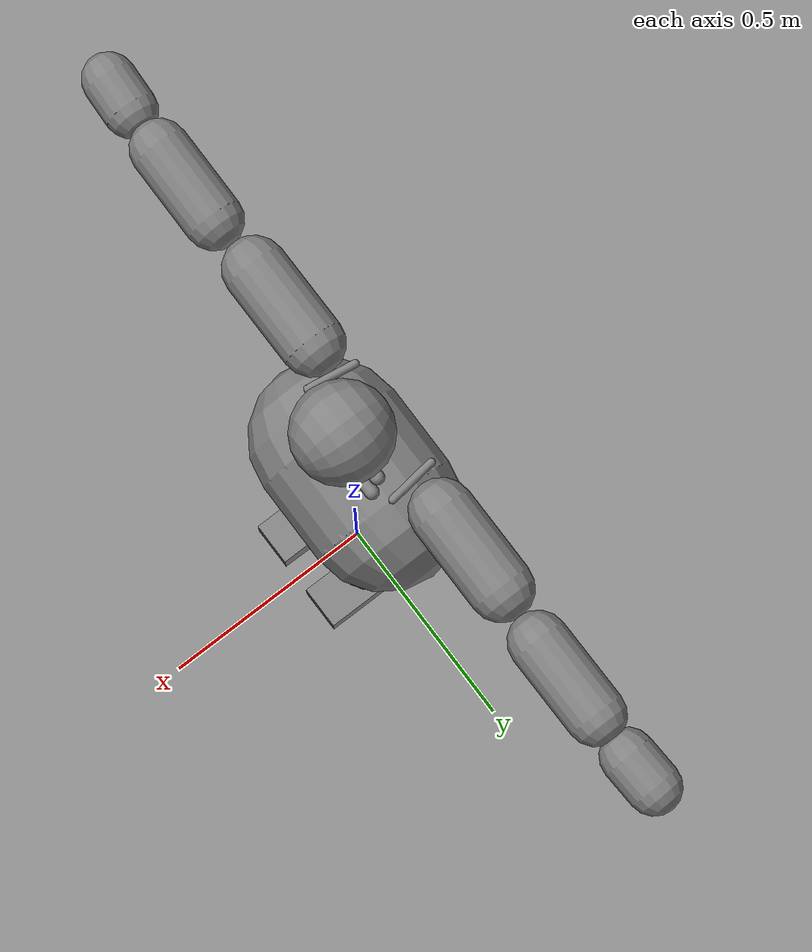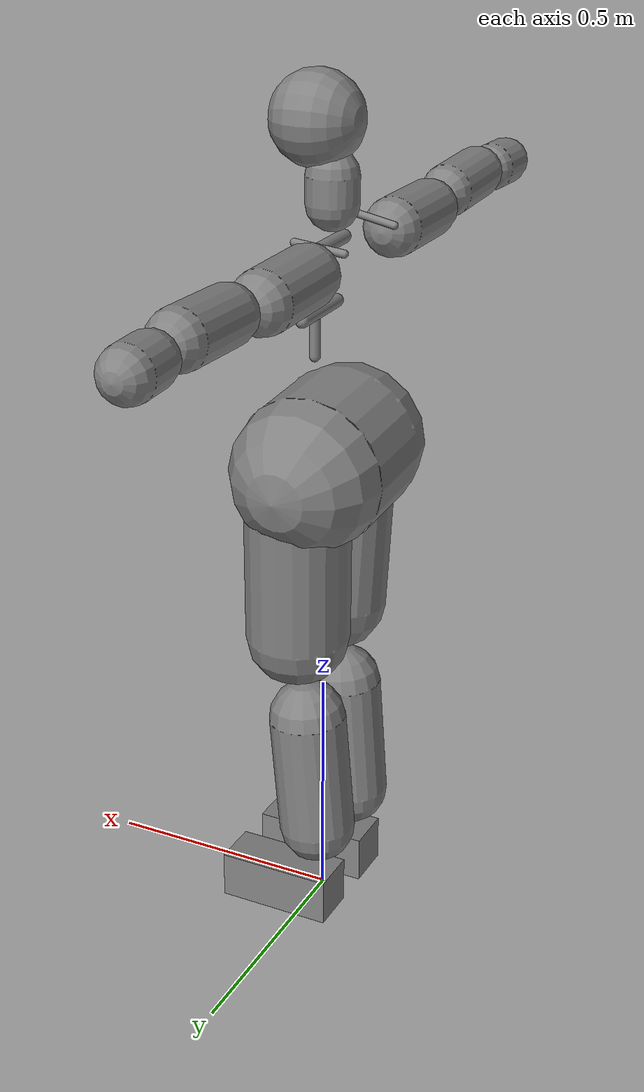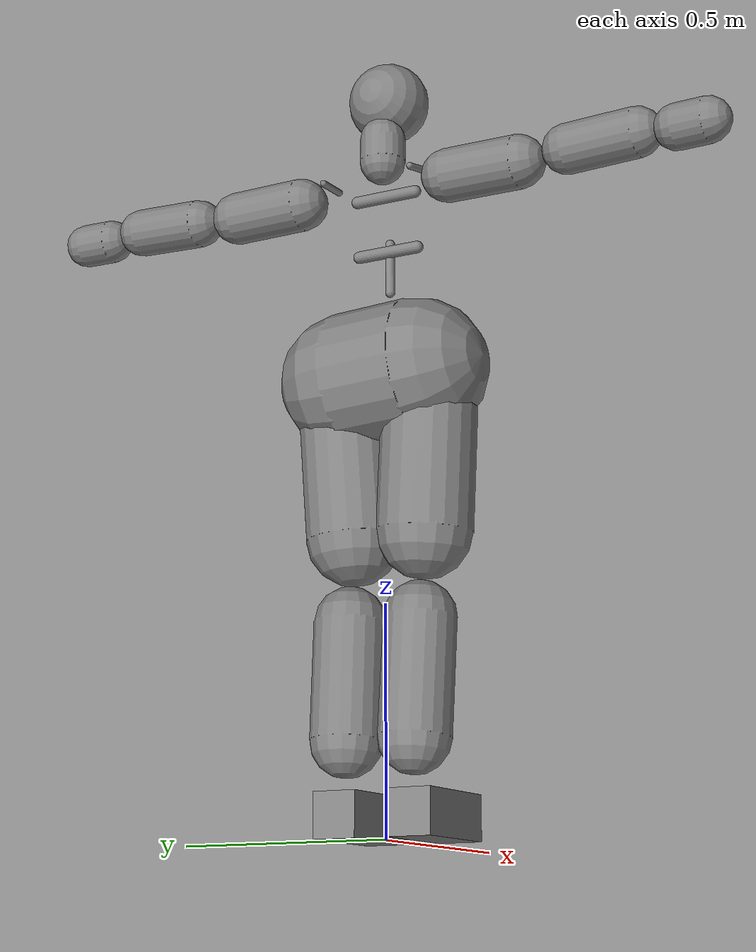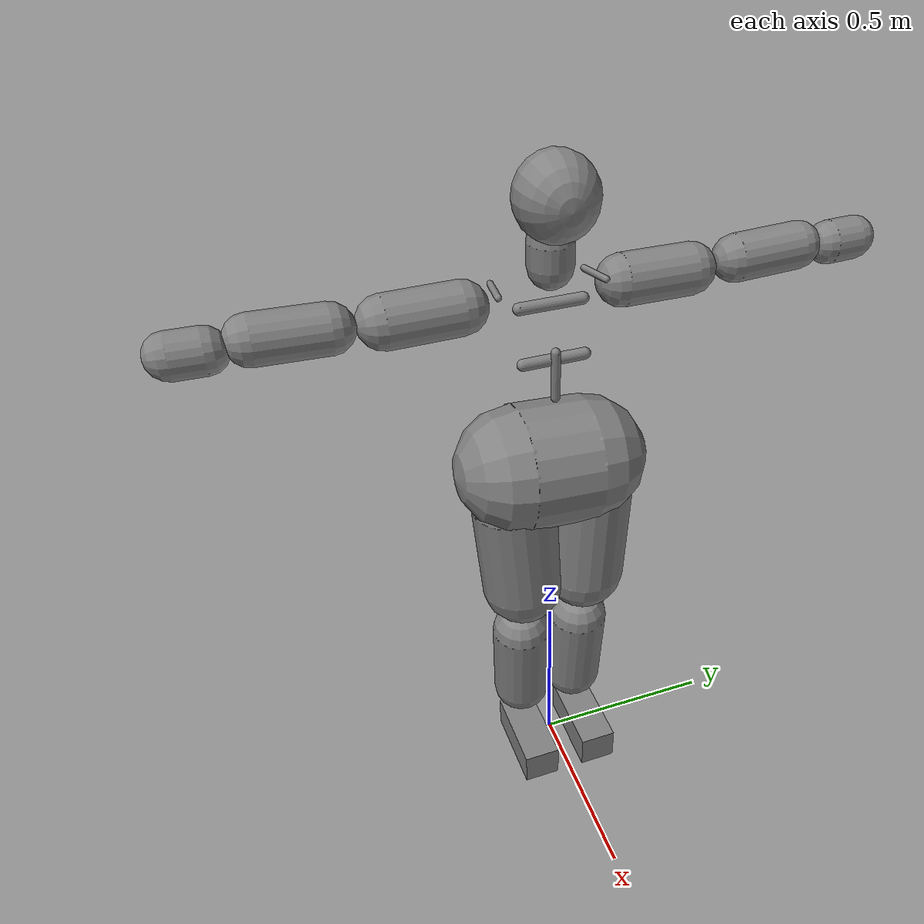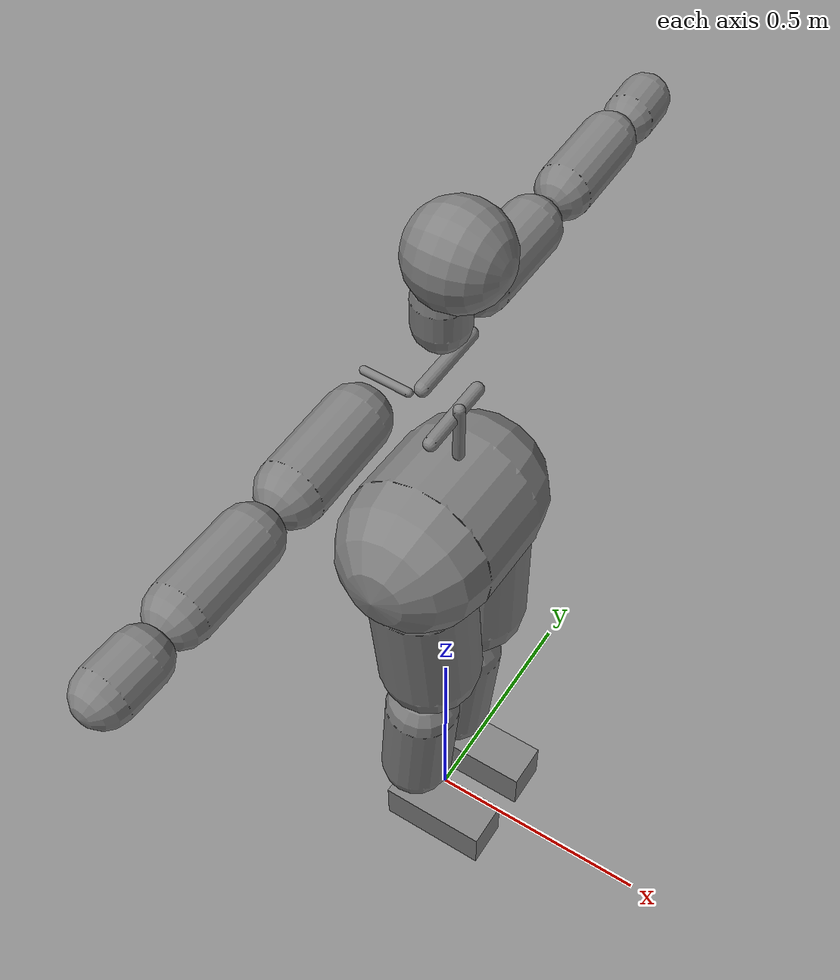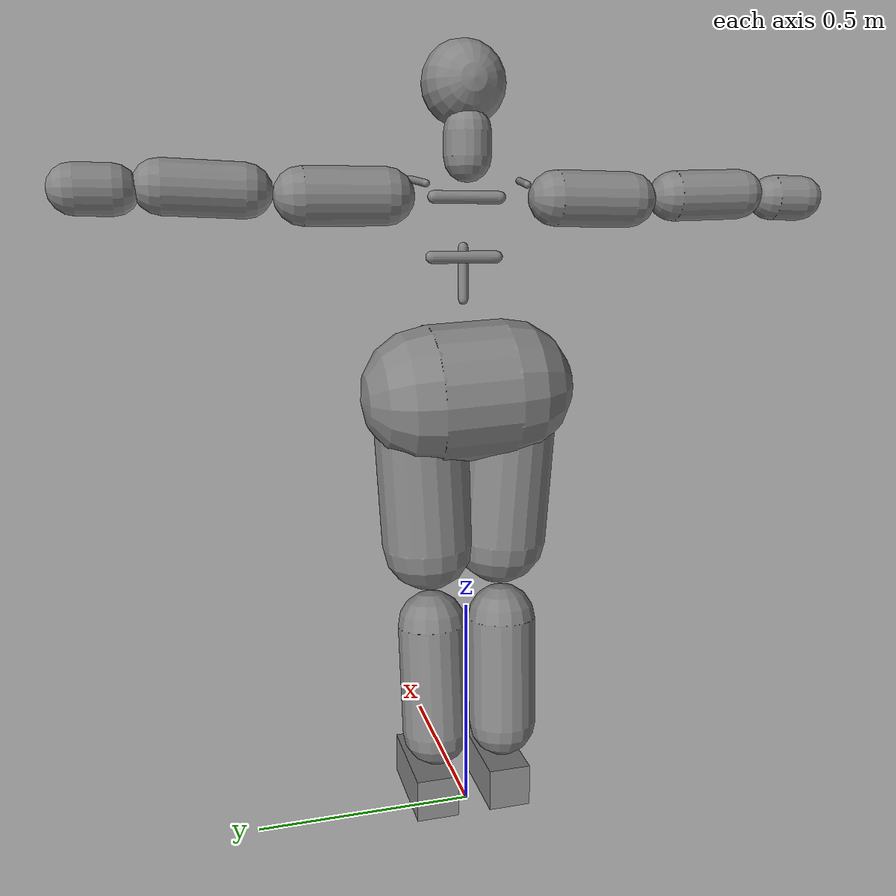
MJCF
<mujoco model="MarathonCharacter_PhysicsAsset">
	<compiler angle="degree" inertiafromgeom="true"/>
	<option timestep="0.01666"/>
	<statistic extent="2" center="0 0 1"/>
  <asset>
    <material specular="0.5" shininess="0.25" name="white" rgba="1 1 1 1"/>
  </asset>
	<default>
		<motor ctrlrange="-1 1" ctrllimited="true"/>
		<default class="body">
			<geom type="capsule" condim="1" friction="0.7" solimp=".9 .99 .003" solref=".015 1" density="100"/>
			<joint type="hinge" damping="0.00" stiffness="1" armature="0.01" limited="true" solimplimit="0 .99 .01"/>
		</default>
	</default>
	<worldbody>
		<body name="Hips" pos="0.0208 -0.0000 1.0399" quat="0.7071 -0.0000 0.7071 -0.0000" childclass="body">
			<freejoint name="Hips"/>
			<geom name="Hips" fromto="0.0335 0.0849 -0.0278 0.0237 -0.0861 -0.0278" quat="0.4725 -0.5018 -0.4982 -0.5261" size="0.1564"/>
			<geom name="Hips_v" material="white" fromto="0.0335 0.0849 -0.0278 0.0237 -0.0861 -0.0278" quat="0.4725 -0.5018 -0.4982 -0.5261" size="0.1564" contype="0" conaffinity="0"/>
			<body name="LeftUpLeg" pos="0.0675 0.0821 -0.0160" quat="1.0000 -0.0000 -0.0000 -0.0000">
				<joint name="LeftUpLeg_x" pos="0.0000 0.0000 0.0000" axis="0.00000000 1.00000000 0.00000000" range="-85 85" stiffness="200.0000" damping="50.0000" armature="0.1"/>
				<joint name="LeftUpLeg_y" pos="0.0000 0.0000 0.0000" axis="1.00000000 0.00000000 0.00000000" range="-45 45" stiffness="200.0000" damping="50.0000" armature="0.1"/>
				<joint name="LeftUpLeg_z" pos="0.0000 0.0000 0.0000" axis="0.00000000 0.00000000 1.00000000" range="-45 45" stiffness="200.0000" damping="50.0000" armature="0.1"/>
				<geom name="LeftUpLeg" fromto="0.3172 0.0052 0.0110 0.0478 0.0208 0.0034" quat="0.0207 0.6968 -0.0201 0.7167" size="0.1062"/>
				<geom name="LeftUpLeg_v" material="white" fromto="0.3172 0.0052 0.0110 0.0478 0.0208 0.0034" quat="0.0207 0.6968 -0.0201 0.7167" size="0.1062" contype="0" conaffinity="0"/>
				<body name="LeftLeg" pos="0.4437 -0.0000 0.0028" quat="1.0000 -0.0000 -0.0000 -0.0000">
					<joint name="LeftLeg_x" pos="0.0000 0.0000 0.0000" axis="0.00000000 1.00000000 0.00000000" range="0 130" stiffness="200.0000" damping="50.0000" armature="0.1"/>
					<geom name="LeftLeg" fromto="0.0639 0.0029 -0.0123 0.3210 -0.0005 -0.0335" quat="0.7356 -0.0045 -0.6774 -0.0049" size="0.0796"/>
					<geom name="LeftLeg_v" material="white" fromto="0.0639 0.0029 -0.0123 0.3210 -0.0005 -0.0335" quat="0.7356 -0.0045 -0.6774 -0.0049" size="0.0796" contype="0" conaffinity="0"/>
					<body name="LeftFoot" pos="0.4443 0.0000 -0.0298" quat="1.0000 -0.0000 -0.0000 -0.0000">
						<joint name="LeftFoot_x" pos="0.0000 0.0000 0.0000" axis="0.00000000 1.00000000 0.00000000" range="-35 35" stiffness="200.0000" damping="50.0000" armature="0.1"/>
						<joint name="LeftFoot_y" pos="0.0000 0.0000 0.0000" axis="1.00000000 0.00000000 0.00000000" range="-45 45" stiffness="2.0000" damping="5.0000" armature="0.1"/>
						<joint name="LeftFoot_z" pos="0.0000 0.0000 0.0000" axis="0.00000000 0.00000000 1.00000000" range="-5 5" stiffness="200.0000" damping="50.0000" armature="0.1"/>
						<geom name="LeftFoot" type="box" pos="0.0333 0.0066 0.0730" quat="1.0000 0.0000 -0.0000 -0.0000" size="0.0500 0.0500 0.1200"/>
						<geom name="LeftFoot_v" material="white" type="box" pos="0.0333 0.0066 0.0730" quat="1.0000 0.0000 -0.0000 -0.0000" size="0.0500 0.0500 0.1200" contype="0" conaffinity="0"/>
					</body>
				</body>
			</body>
			<body name="RightUpLeg" pos="0.0675 -0.0821 -0.0160" quat="1.0000 -0.0000 -0.0000 -0.0000">
				<joint name="RightUpLeg_x" pos="0.0000 0.0000 0.0000" axis="0.00000000 1.00000000 0.00000000" range="-85 85" stiffness="200.0000" damping="50.0000" armature="0.1"/>
				<joint name="RightUpLeg_y" pos="0.0000 0.0000 0.0000" axis="1.00000000 0.00000000 0.00000000" range="-45 45" stiffness="200.0000" damping="50.0000" armature="0.1"/>
				<joint name="RightUpLeg_z" pos="0.0000 0.0000 0.0000" axis="0.00000000 0.00000000 1.00000000" range="-45 45" stiffness="200.0000" damping="50.0000" armature="0.1"/>
				<geom name="RightUpLeg" fromto="0.3167 -0.0045 0.0111 0.0463 -0.0218 0.0034" quat="0.0228 -0.6967 -0.0222 -0.7167" size="0.1062"/>
				<geom name="RightUpLeg_v" material="white" fromto="0.3167 -0.0045 0.0111 0.0463 -0.0218 0.0034" quat="0.0228 -0.6967 -0.0222 -0.7167" size="0.1062" contype="0" conaffinity="0"/>
				<body name="RightLeg" pos="0.4437 0.0000 0.0028" quat="1.0000 -0.0000 -0.0000 -0.0000">
					<joint name="RightLeg_x" pos="0.0000 0.0000 0.0000" axis="0.00000000 1.00000000 0.00000000" range="0 130" stiffness="200.0000" damping="50.0000" armature="0.1"/>
					<geom name="RightLeg" fromto="0.0639 -0.0029 -0.0123 0.3210 0.0005 -0.0335" quat="0.7356 0.0045 -0.6774 0.0049" size="0.0796"/>
					<geom name="RightLeg_v" material="white" fromto="0.0639 -0.0029 -0.0123 0.3210 0.0005 -0.0335" quat="0.7356 0.0045 -0.6774 0.0049" size="0.0796" contype="0" conaffinity="0"/>
					<body name="RightFoot" pos="0.4443 0.0000 -0.0298" quat="1.0000 -0.0000 -0.0000 -0.0000">
						<joint name="RightFoot_x" pos="0.0000 0.0000 0.0000" axis="0.00000000 1.00000000 0.00000000" range="-35 35" stiffness="200.0000" damping="50.0000" armature="0.1"/>
						<joint name="RightFoot_y" pos="0.0000 0.0000 0.0000" axis="1.00000000 0.00000000 0.00000000" range="-45 45" stiffness="2.0000" damping="5.0000" armature="0.1"/>
						<joint name="RightFoot_z" pos="0.0000 0.0000 0.0000" axis="0.00000000 0.00000000 1.00000000" range="-5 5" stiffness="200.0000" damping="50.0000" armature="0.1"/>
						<geom name="RightFoot" type="box" pos="0.0333 -0.0066 0.0730" quat="1.0000 0.0000 -0.0000 -0.0000" size="0.0500 0.0500 0.1200"/>
						<geom name="RightFoot_v" material="white" type="box" pos="0.0333 -0.0066 0.0730" quat="1.0000 0.0000 -0.0000 -0.0000" size="0.0500 0.0500 0.1200" contype="0" conaffinity="0"/>
					</body>
				</body>
			</body>
			<body name="Spine" pos="-0.1018 0.0000 0.0013" quat="1.0000 -0.0000 -0.0000 -0.0000">
				<joint name="Spine_x" pos="0.0000 0.0000 0.0000" axis="0.00000000 1.00000000 0.00000000" range="-30 30" stiffness="500.0000" damping="50.0000" armature="100.01"/>
				<joint name="Spine_y" pos="0.0000 0.0000 0.0000" axis="1.00000000 0.00000000 0.00000000" range="-30 30" stiffness="500.0000" damping="50.0000" armature="0.1"/>
				<joint name="Spine_z" pos="0.0000 0.0000 0.0000" axis="0.00000000 0.00000000 1.00000000" range="-30 30" stiffness="500.0000" damping="50.0000" armature="0.1"/>
				<geom name="Spine" fromto="-0.0713 0.0000 -0.0000 -0.1854 -0.0000 -0.0000" quat="0.0001 -0.7054 -0.0001 -0.7088" size="0.01098"/>
				<geom name="Spine_v" material="white" fromto="-0.0713 0.0000 -0.0000 -0.1854 -0.0000 -0.0000" quat="0.0001 -0.7054 -0.0001 -0.7088" size="0.01098" contype="0" conaffinity="0"/>
				<body name="Spine1" pos="-0.1008 0.0000 -0.0100" quat="1.0000 -0.0000 -0.0000 -0.0000">
					<joint name="Spine1_x" pos="0.0000 0.0000 0.0000" axis="0.00000000 1.00000000 0.00000000" range="-45 45" stiffness="500.0000" damping="50.0000" armature="100.01"/>
					<joint name="Spine1_y" pos="0.0000 0.0000 0.0000" axis="1.00000000 0.00000000 0.00000000" range="-45 45" stiffness="500.0000" damping="50.0000" armature="100.01"/>
					<joint name="Spine1_z" pos="0.0000 0.0000 0.0000" axis="0.00000000 0.00000000 1.00000000" range="-45 45" stiffness="500.0000" damping="50.0000" armature="100.01"/>
					<geom name="Spine1" fromto="-0.0636 -0.0738 0.0000 -0.0636 0.0738 0.0000" quat="0.5003 0.5003 -0.4997 0.4997" size="0.01356"/>
					<geom name="Spine1_v" material="white" fromto="-0.0636 -0.0738 0.0000 -0.0636 0.0738 0.0000" quat="0.5003 0.5003 -0.4997 0.4997" size="0.01356" contype="0" conaffinity="0"/>
					<body name="Spine2" pos="-0.0910 0.0000 -0.0137" quat="1.0000 -0.0000 -0.0000 -0.0000">
						<joint name="Spine2_x" pos="0.0000 0.0000 0.0000" axis="0.00000000 1.00000000 0.00000000" range="-45 45" stiffness="500.0000" damping="50.0000" armature="100.01"/>
						<joint name="Spine2_y" pos="0.0000 0.0000 0.0000" axis="1.00000000 0.00000000 0.00000000" range="-45 45" stiffness="500.0000" damping="50.0000" armature="100.01"/>
						<joint name="Spine2_z" pos="0.0000 0.0000 0.0000" axis="0.00000000 0.00000000 1.00000000" range="-45 45" stiffness="500.0000" damping="50.0000" armature="100.01"/>
						<geom name="Spine2" fromto="-0.1 0.0712 0.0000 -0.1 -0.0759 -0.0000" quat="0.5672 -0.4273 -0.4426 -0.5475" size="0.01364"/>
						<geom name="Spine2_v" material="white" fromto="-0.1 0.0712 0.0000 -0.1 -0.0759 -0.0000" quat="0.5672 -0.4273 -0.4426 -0.5475" size="0.01364" contype="0" conaffinity="0"/>
						<body name="LeftShoulder" pos="-0.1095 0.0457 -0.0263" quat="1.0000 -0.0000 -0.0000 -0.0000">
							<joint name="LeftShoulder_x" pos="0.0000 0.0000 0.0000" axis="0.00000000 1.00000000 0.00000000" range="-30 30" stiffness="150.0000" damping="20.0000" armature="0.1"/>
							<joint name="LeftShoulder_y" pos="0.0000 0.0000 0.0000" axis="1.00000000 0.00000000 0.00000000" range="-30 30" stiffness="150.0000" damping="20.0000" armature="0.1"/>
							<joint name="LeftShoulder_z" pos="0.0000 0.0000 0.0000" axis="0.00000000 0.00000000 1.00000000" range="-60 0" stiffness="150.0000" damping="20.0000" armature="0.1"/>
							<geom name="LeftShoulder" fromto="-0.0265 0.0766 0.0313 -0.0135 0.0638 -0.0629" quat="0.7071 -0.0957 -0.0015 0.7006" size="0.00762"/>
							<geom name="LeftShoulder_v" material="white" fromto="-0.0265 0.0766 0.0313 -0.0135 0.0638 -0.0629" quat="0.7071 -0.0957 -0.0015 0.7006" size="0.00762" contype="0" conaffinity="0"/>
							<body name="LeftArm" pos="0.0052 0.1059 -0.0223" quat="1.0000 -0.0000 -0.0000 -0.0000">
								<joint name="LeftArm_x" pos="0.0000 0.0000 0.0000" axis="0.00000000 1.00000000 0.00000000" range="-90 30" stiffness="150.0000" damping="20.0000" armature="0.1"/>
								<joint name="LeftArm_y" pos="0.0000 0.0000 0.0000" axis="1.00000000 0.00000000 0.00000000" range="-90 30" stiffness="150.0000" damping="20.0000" armature="0.1"/>
								<joint name="LeftArm_z" pos="0.0000 0.0000 0.0000" axis="0.00000000 0.00000000 1.00000000" range="-170 0" stiffness="150.0000" damping="20.0000" armature="0.1"/>
								<geom name="LeftArm" fromto="0.0064 0.0348 -0.0051 0.0080 0.2051 -0.0051" quat="0.5025 0.4975 -0.5024 0.4975" size="0.0599"/>
								<geom name="LeftArm_v" material="white" fromto="0.0064 0.0348 -0.0051 0.0080 0.2051 -0.0051" quat="0.5025 0.4975 -0.5024 0.4975" size="0.0599" contype="0" conaffinity="0"/>
								<body name="LeftForeArm" pos="0.0000 0.2784 0.0000" quat="1.0 0.0 0.0000 0.0000">
									<joint name="LeftForeArm_x" pos="0.0000 0.0000 0.0000" axis="0.00000000 1.00000000 0.00000000" range="0 170" stiffness="1.0000" damping="1.0000" armature="0.1"/>
									<joint name="LeftForeArm_y" pos="0.0000 0.0000 0.0000" axis="1.00000000 0.00000000 0.00000000" range="-90 90" stiffness="1.0000" damping="1.0000" armature="0.1"/>
									<joint name="LeftForeArm_z" pos="0.0000 0.0000 0.0000" axis="0.00000000 0.00000000 1.00000000" range="-45 45" stiffness="1.0000" damping="1.0000" armature="0.1"/>
									<geom name="LeftForeArm" fromto="-0.0015 0.0385 0.0007 -0.0070 0.1992 0.0002" quat="0.4920 0.5078 -0.4907 0.5091" size="0.0551"/>
									<geom name="LeftForeArm_v" material="white" fromto="-0.0015 0.0385 0.0007 -0.0070 0.1992 0.0002" quat="0.4920 0.5078 -0.4907 0.5091" size="0.0551" contype="0" conaffinity="0"/>
									<body name="LeftHand" pos="0.0000 0.2833 0.0000" quat="1.0000 -0.0000 -0.0000 -0.0000">
										<joint name="LeftHand_y" pos="0.0000 0.0000 0.0000" axis="1.00000000 0.00000000 0.00000000" range="-25 25" stiffness="150.0000" damping="20.0000" armature="0.1"/>
										<joint name="LeftHand_z" pos="0.0000 0.0000 0.0000" axis="0.00000000 0.00000000 1.00000000" range="-35 35" stiffness="150.0000" damping="20.0000" armature="0.1"/>
										<geom name="LeftHand" fromto="-0.0003 0.0041 -0.0009 -0.0001 0.0736 -0.0044" quat="0.5133 0.4864 -0.4878 0.5118" size="0.0503"/>
										<geom name="LeftHand_v" material="white" fromto="-0.0003 0.0041 -0.0009 -0.0001 0.0736 -0.0044" quat="0.5133 0.4864 -0.4878 0.5118" size="0.0503" contype="0" conaffinity="0"/>
									</body>
								</body>
							</body>
						</body>
						<body name="Neck" pos="-0.1667 0.0000 -0.0252" quat="1.0000 -0.0000 -0.0000 -0.0000">
							<joint name="Neck_x" pos="0.0000 0.0000 0.0000" axis="0.00000000 1.00000000 0.00000000" range="-25 25" stiffness="100.0000" damping="20.0000" armature="0.1"/>
							<geom name="Neck" fromto="-0.0675 -0.0000 0.0133 -0.0148 0.0000 0.0133" quat="0.7071 0.0000 -0.7071 0.0000" size="0.0518"/>
							<geom name="Neck_v" material="white" fromto="-0.0675 -0.0000 0.0133 -0.0148 0.0000 0.0133" quat="0.7071 0.0000 -0.7071 0.0000" size="0.0518" contype="0" conaffinity="0"/>
							<body name="Head" pos="-0.0962 -0.0000 0.0169" quat="1.0000 -0.0000 -0.0000 -0.0000">
								<joint name="Head_x" pos="0.0000 0.0000 0.0000" axis="0.00000000 1.00000000 0.00000000" range="-25 25" stiffness="100.0000" damping="20.0000" armature="0.1"/>
								<joint name="Head_y" pos="0.0000 0.0000 0.0000" axis="1.00000000 0.00000000 0.00000000" range="-15 15" stiffness="100.0000" damping="20.0000" armature="0.1"/>
								<joint name="Head_z" pos="0.0000 0.0000 0.0000" axis="0.00000000 0.00000000 1.00000000" range="-25 25" stiffness="100.0000" damping="20.0000" armature="0.1"/>
								<geom name="Head" type="sphere" pos="-0.0725 0.0000 0.0275" size="0.091462"/>
								<geom name="Head_v" material="white" type="sphere" pos="-0.0725 0.0000 0.0275" size="0.091462" contype="0" conaffinity="0"/>
							</body>
						</body>
						<body name="RightShoulder" pos="-0.1095 -0.0457 -0.0263" quat="1.0000 -0.0000 -0.0000 -0.0000">
							<joint name="RightShoulder_x" pos="0.0000 0.0000 0.0000" axis="0.00000000 1.00000000 0.00000000" range="-30 30" stiffness="150.0000" damping="20.0000" armature="0.1"/>
							<joint name="RightShoulder_y" pos="0.0000 0.0000 0.0000" axis="1.00000000 0.00000000 0.00000000" range="-30 30" stiffness="150.0000" damping="20.0000" armature="0.1"/>
							<joint name="RightShoulder_z" pos="0.0000 0.0000 0.0000" axis="0.00000000 0.00000000 1.00000000" range="0 60" stiffness="150.0000" damping="20.0000" armature="0.1"/>
							<geom name="RightShoulder" fromto="-0.0265 -0.0766 0.0313 -0.0135 -0.0638 -0.0629" quat="0.7071 -0.0068 -0.0836 0.7071" size="0.00762"/>
							<geom name="RightShoulder_v" material="white" fromto="-0.0265 -0.0766 0.0313 -0.0135 -0.0638 -0.0629" quat="0.7071 -0.0068 -0.0836 0.7071" size="0.00762" contype="0" conaffinity="0"/>
							<body name="RightArm" pos="0.0052 -0.1059 -0.0223" quat="1.0000 -0.0000 -0.0000 -0.0000">
								<joint name="RightArm_x" pos="0.0000 0.0000 0.0000" axis="0.00000000 1.00000000 0.00000000" range="-30 90" stiffness="150.0000" damping="20.0000" armature="0.1"/>
								<joint name="RightArm_y" pos="0.0000 0.0000 0.0000" axis="1.00000000 0.00000000 0.00000000" range="-30 90" stiffness="150.0000" damping="20.0000" armature="0.1"/>
								<joint name="RightArm_z" pos="0.0000 0.0000 0.0000" axis="0.00000000 0.00000000 1.00000000" range="0 170" stiffness="150.0000" damping="20.0000" armature="0.1"/>
								<geom name="RightArm" fromto="0.0064 -0.0348 -0.0051 0.0080 -0.2051 -0.0051" quat="0.5025 -0.4975 -0.5024 -0.4975" size="0.0599"/>
								<geom name="RightArm_v" material="white" fromto="0.0064 -0.0348 -0.0051 0.0080 -0.2051 -0.0051" quat="0.5025 -0.4975 -0.5024 -0.4975" size="0.0599" contype="0" conaffinity="0"/>
								<body name="RightForeArm" pos="0.0000 -0.2784 0.0000" quat="1.0000 -0.0000 -0.0000 -0.0000">
									<joint name="RightForeArm_x" pos="0.0000 0.0000 0.0000" axis="0.00000000 1.00000000 0.00000000" range="-170 0" stiffness="1.0000" damping="1.0000" armature="0.1"/>
									<joint name="RightForeArm_y" pos="0.0000 0.0000 0.0000" axis="1.00000000 0.00000000 0.00000000" range="-90 90" stiffness="1.0000" damping="1.0000" armature="0.1"/>
									<joint name="RightForeArm_z" pos="0.0000 0.0000 0.0000" axis="0.00000000 0.00000000 1.00000000" range="-45 45" stiffness="1.0000" damping="1.0000" armature="0.1"/>
									<geom name="RightForeArm" fromto="-0.0015 -0.0385 0.0007 -0.0070 -0.1992 0.0002" quat="0.4920 -0.5078 -0.4907 -0.5091" size="0.0551"/>
									<geom name="RightForeArm_v" material="white" fromto="-0.0015 -0.0385 0.0007 -0.0070 -0.1992 0.0002" quat="0.4920 -0.5078 -0.4907 -0.5091" size="0.0551" contype="0" conaffinity="0"/>
									<body name="RightHand" pos="0.0000 -0.2833 0.0000" quat="1.0000 -0.0000 -0.0000 -0.0000">
										<joint name="RightHand_y" pos="0.0000 0.0000 0.0000" axis="1.00000000 0.00000000 0.00000000" range="-25 25" stiffness="150.0000" damping="20.0000" armature="0.1"/>
										<joint name="RightHand_z" pos="0.0000 0.0000 0.0000" axis="0.00000000 0.00000000 1.00000000" range="-35 35" stiffness="150.0000" damping="20.0000" armature="0.1"/>
										<geom name="RightHand" fromto="-0.0003 -0.0041 -0.0009 -0.0001 -0.0736 -0.0044" quat="0.5134 -0.4863 -0.4879 -0.5117" size="0.0503"/>
										<geom name="RightHand_v" material="white" fromto="-0.0003 -0.0041 -0.0009 -0.0001 -0.0736 -0.0044" quat="0.5134 -0.4863 -0.4879 -0.5117" size="0.0503" contype="0" conaffinity="0"/>
									</body>
								</body>
							</body>
						</body>
					</body>
				</body>
			</body>
		</body>
	</worldbody>
	<actuator>
		<motor name="LeftUpLeg_x" gear="10" joint="LeftUpLeg_x"/>
		<motor name="LeftUpLeg_y" gear="10" joint="LeftUpLeg_y"/>
		<motor name="LeftUpLeg_z" gear="10" joint="LeftUpLeg_z"/>
		<motor name="LeftLeg_x" gear="10" joint="LeftLeg_x"/>
		<motor name="LeftFoot_x" gear="10" joint="LeftFoot_x"/>
		<motor name="LeftFoot_y" gear="10" joint="LeftFoot_y"/>
		<motor name="LeftFoot_z" gear="10" joint="LeftFoot_z"/>
		<motor name="RightUpLeg_x" gear="10" joint="RightUpLeg_x"/>
		<motor name="RightUpLeg_y" gear="10" joint="RightUpLeg_y"/>
		<motor name="RightUpLeg_z" gear="10" joint="RightUpLeg_z"/>
		<motor name="RightLeg_x" gear="10" joint="RightLeg_x"/>
		<motor name="RightFoot_x" gear="10" joint="RightFoot_x"/>
		<motor name="RightFoot_y" gear="10" joint="RightFoot_y"/>
		<motor name="RightFoot_z" gear="10" joint="RightFoot_z"/>
		<motor name="Spine_x" gear="10" joint="Spine_x"/>
		<motor name="Spine_y" gear="10" joint="Spine_y"/>
		<motor name="Spine_z" gear="10" joint="Spine_z"/>
		<motor name="Spine1_x" gear="10" joint="Spine1_x"/>
		<motor name="Spine1_y" gear="10" joint="Spine1_y"/>
		<motor name="Spine1_z" gear="10" joint="Spine1_z"/>
		<motor name="Spine2_x" gear="10" joint="Spine2_x"/>
		<motor name="Spine2_y" gear="10" joint="Spine2_y"/>
		<motor name="Spine2_z" gear="10" joint="Spine2_z"/>

		<motor name="LeftShoulder_x" gear="10" joint="LeftShoulder_x"/>
		<motor name="LeftShoulder_y" gear="10" joint="LeftShoulder_y"/>
		<motor name="LeftShoulder_z" gear="10" joint="LeftShoulder_z"/>
		<motor name="LeftArm_x" gear="10" joint="LeftArm_x"/>
		<motor name="LeftArm_y" gear="10" joint="LeftArm_y"/>
		<motor name="LeftArm_z" gear="10" joint="LeftArm_z"/>
		<motor name="LeftForeArm_x" gear="10" joint="LeftForeArm_x"/>
		<motor name="LeftForeArm_y" gear="10" joint="LeftForeArm_y"/>
		<motor name="LeftForeArm_z" gear="10" joint="LeftForeArm_z"/>
		<motor name="LeftHand_y" gear="10" joint="LeftHand_y"/>
		<motor name="LeftHand_z" gear="10" joint="LeftHand_z"/>

		<motor name="Neck_x" gear="10" joint="Neck_x"/>
		<motor name="Head_x" gear="10" joint="Head_x"/>
		<motor name="Head_y" gear="10" joint="Head_y"/>
		<motor name="Head_z" gear="10" joint="Head_z"/>

		<motor name="RightShoulder_x" gear="10" joint="RightShoulder_x"/>
		<motor name="RightShoulder_y" gear="10" joint="RightShoulder_y"/>
		<motor name="RightShoulder_z" gear="10" joint="RightShoulder_z"/>
		<motor name="RightArm_x" gear="10" joint="RightArm_x"/>
		<motor name="RightArm_y" gear="10" joint="RightArm_y"/>
		<motor name="RightArm_z" gear="10" joint="RightArm_z"/>
		<motor name="RightForeArm_x" gear="10" joint="RightForeArm_x"/>
		<motor name="RightForeArm_y" gear="10" joint="RightForeArm_y"/>
		<motor name="RightForeArm_z" gear="10" joint="RightForeArm_z"/>
		<motor name="RightHand_y" gear="10" joint="RightHand_y"/>
		<motor name="RightHand_z" gear="10" joint="RightHand_z"/>
	</actuator>
</mujoco>
